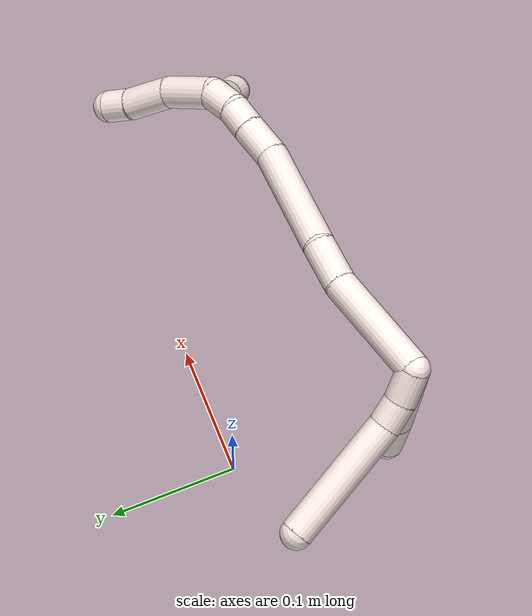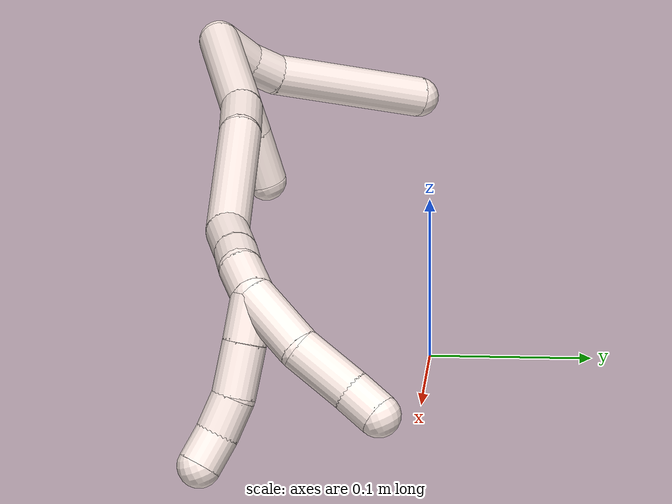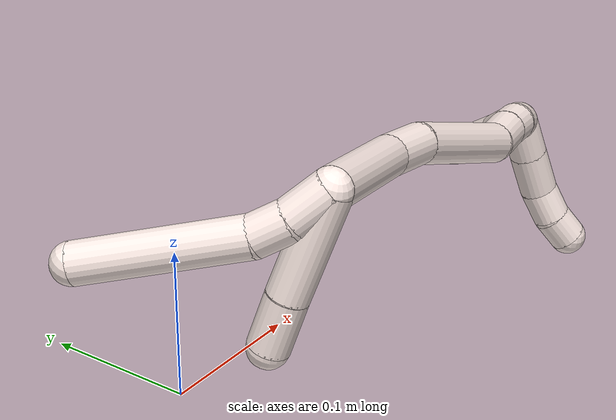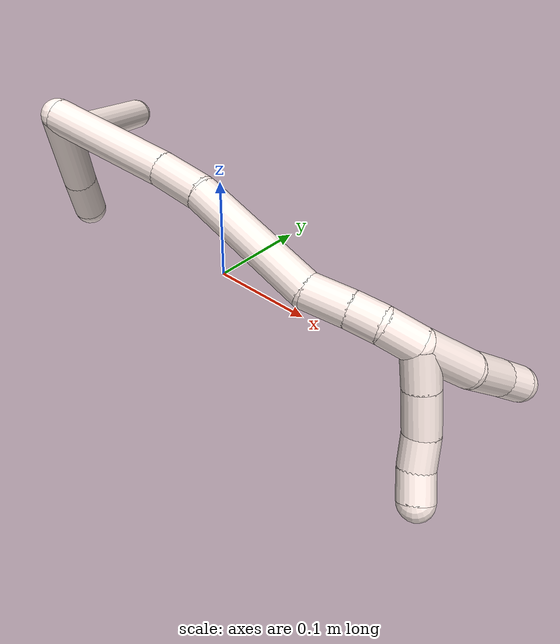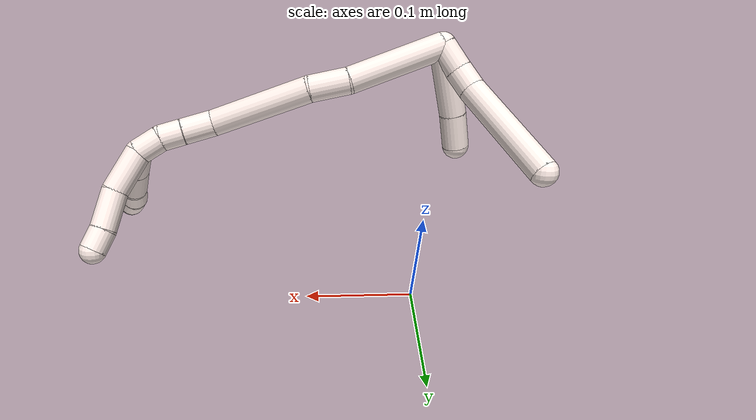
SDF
<sdf version="1.7">
 <world name="default">
  <model name="11">
   <static>0</static>
   <link name="11">
    <collision name="collision-cylinder-e_1_2_8">
     <pose>-0.00694 0.005068 -0.01025 -2.68238 -0.54549 1.74945</pose>
     <geometry><cylinder><radius>0.0125</radius><length>0.026752</length></cylinder></geometry>
     <surface>
      <friction><ode><mu>1.16</mu><mu2>1.16</mu2><slip1>0</slip1><slip2>0</slip2></ode></friction>
      <contact><ode><kp>1e+06</kp><kd>1</kd><max_vel>0</max_vel><min_depth>0.001</min_depth></ode></contact>
     </surface>
    </collision>
    <visual name="visual-cylinder-e_1_2_8">
     <pose>-0.00694 0.005068 -0.01025 -2.68238 -0.54549 1.74945</pose>
     <geometry><cylinder><radius>0.0125</radius><length>0.026752</length></cylinder></geometry>
     <material><ambient>1 0.933333 0.909804 1</ambient></material>
    </visual>
    <collision name="collision-cylinder-e_2_8_9">
     <pose>-0.018824 0.016342 -0.028123 -2.45831 -0.466053 1.1771</pose>
     <geometry><cylinder><radius>0.0125</radius><length>0.022004</length></cylinder></geometry>
     <surface>
      <friction><ode><mu>1.16</mu><mu2>1.16</mu2><slip1>0</slip1><slip2>0</slip2></ode></friction>
      <contact><ode><kp>1e+06</kp><kd>1</kd><max_vel>0</max_vel><min_depth>0.001</min_depth></ode></contact>
     </surface>
    </collision>
    <visual name="visual-cylinder-e_2_8_9">
     <pose>-0.018824 0.016342 -0.028123 -2.45831 -0.466053 1.1771</pose>
     <geometry><cylinder><radius>0.0125</radius><length>0.022004</length></cylinder></geometry>
     <material><ambient>1 0.933333 0.909804 1</ambient></material>
    </visual>
    <collision name="collision-cylinder-e_3_9_6">
     <pose>-0.04336 0.060906 -0.06234 -2.17704 -0.39741 0.734388</pose>
     <geometry><cylinder><radius>0.0125</radius><length>0.101244</length></cylinder></geometry>
     <surface>
      <friction><ode><mu>1.16</mu><mu2>1.16</mu2><slip1>0</slip1><slip2>0</slip2></ode></friction>
      <contact><ode><kp>1e+06</kp><kd>1</kd><max_vel>0</max_vel><min_depth>0.001</min_depth></ode></contact>
     </surface>
    </collision>
    <visual name="visual-cylinder-e_3_9_6">
     <pose>-0.04336 0.060906 -0.06234 -2.17704 -0.39741 0.734388</pose>
     <geometry><cylinder><radius>0.0125</radius><length>0.101244</length></cylinder></geometry>
     <material><ambient>1 0.933333 0.909804 1</ambient></material>
    </visual>
    <collision name="collision-cylinder-e_1_2_10">
     <pose>-0.009122 -0.002511 -0.031821 3.06285 -0.278351 -2.59332</pose>
     <geometry><cylinder><radius>0.0125</radius><length>0.066396</length></cylinder></geometry>
     <surface>
      <friction><ode><mu>1.16</mu><mu2>1.16</mu2><slip1>0</slip1><slip2>0</slip2></ode></friction>
      <contact><ode><kp>1e+06</kp><kd>1</kd><max_vel>0</max_vel><min_depth>0.001</min_depth></ode></contact>
     </surface>
    </collision>
    <visual name="visual-cylinder-e_1_2_10">
     <pose>-0.009122 -0.002511 -0.031821 3.06285 -0.278351 -2.59332</pose>
     <geometry><cylinder><radius>0.0125</radius><length>0.066396</length></cylinder></geometry>
     <material><ambient>1 0.933333 0.909804 1</ambient></material>
    </visual>
    <collision name="collision-cylinder-e_2_10_5">
     <pose>-0.021931 -0.00648 -0.07997 3.05255 -0.22124 -2.3787</pose>
     <geometry><cylinder><radius>0.0125</radius><length>0.033604</length></cylinder></geometry>
     <surface>
      <friction><ode><mu>1.16</mu><mu2>1.16</mu2><slip1>0</slip1><slip2>0</slip2></ode></friction>
      <contact><ode><kp>1e+06</kp><kd>1</kd><max_vel>0</max_vel><min_depth>0.001</min_depth></ode></contact>
     </surface>
    </collision>
    <visual name="visual-cylinder-e_2_10_5">
     <pose>-0.021931 -0.00648 -0.07997 3.05255 -0.22124 -2.3787</pose>
     <geometry><cylinder><radius>0.0125</radius><length>0.033604</length></cylinder></geometry>
     <material><ambient>1 0.933333 0.909804 1</ambient></material>
    </visual>
    <collision name="collision-cylinder-e_1_2_11">
     <pose>0.042651 0.00144 -0.01561 -3.04959 1.21857 -3.00985</pose>
     <geometry><cylinder><radius>0.0125</radius><length>0.090882</length></cylinder></geometry>
     <surface>
      <friction><ode><mu>1.16</mu><mu2>1.16</mu2><slip1>0</slip1><slip2>0</slip2></ode></friction>
      <contact><ode><kp>1e+06</kp><kd>1</kd><max_vel>0</max_vel><min_depth>0.001</min_depth></ode></contact>
     </surface>
    </collision>
    <visual name="visual-cylinder-e_1_2_11">
     <pose>0.042651 0.00144 -0.01561 -3.04959 1.21857 -3.00985</pose>
     <geometry><cylinder><radius>0.0125</radius><length>0.090882</length></cylinder></geometry>
     <material><ambient>1 0.933333 0.909804 1</ambient></material>
    </visual>
    <collision name="collision-cylinder-e_2_11_12">
     <pose>0.102983 0.000825 -0.035388 2.68331 1.31378 2.55416</pose>
     <geometry><cylinder><radius>0.0125</radius><length>0.036562</length></cylinder></geometry>
     <surface>
      <friction><ode><mu>1.16</mu><mu2>1.16</mu2><slip1>0</slip1><slip2>0</slip2></ode></friction>
      <contact><ode><kp>1e+06</kp><kd>1</kd><max_vel>0</max_vel><min_depth>0.001</min_depth></ode></contact>
     </surface>
    </collision>
    <visual name="visual-cylinder-e_2_11_12">
     <pose>0.102983 0.000825 -0.035388 2.68331 1.31378 2.55416</pose>
     <geometry><cylinder><radius>0.0125</radius><length>0.036562</length></cylinder></geometry>
     <material><ambient>1 0.933333 0.909804 1</ambient></material>
    </visual>
    <collision name="collision-cylinder-e_3_12_13">
     <pose>0.164138 -0.012067 -0.057608 2.60098 1.11979 2.30911</pose>
     <geometry><cylinder><radius>0.0125</radius><length>0.096609</length></cylinder></geometry>
     <surface>
      <friction><ode><mu>1.16</mu><mu2>1.16</mu2><slip1>0</slip1><slip2>0</slip2></ode></friction>
      <contact><ode><kp>1e+06</kp><kd>1</kd><max_vel>0</max_vel><min_depth>0.001</min_depth></ode></contact>
     </surface>
    </collision>
    <visual name="visual-cylinder-e_3_12_13">
     <pose>0.164138 -0.012067 -0.057608 2.60098 1.11979 2.30911</pose>
     <geometry><cylinder><radius>0.0125</radius><length>0.096609</length></cylinder></geometry>
     <material><ambient>1 0.933333 0.909804 1</ambient></material>
    </visual>
    <collision name="collision-cylinder-e_4_13_14">
     <pose>0.222006 -0.021718 -0.079515 -2.84331 1.29758 -2.75036</pose>
     <geometry><cylinder><radius>0.0125</radius><length>0.029896</length></cylinder></geometry>
     <surface>
      <friction><ode><mu>1.16</mu><mu2>1.16</mu2><slip1>0</slip1><slip2>0</slip2></ode></friction>
      <contact><ode><kp>1e+06</kp><kd>1</kd><max_vel>0</max_vel><min_depth>0.001</min_depth></ode></contact>
     </surface>
    </collision>
    <visual name="visual-cylinder-e_4_13_14">
     <pose>0.222006 -0.021718 -0.079515 -2.84331 1.29758 -2.75036</pose>
     <geometry><cylinder><radius>0.0125</radius><length>0.029896</length></cylinder></geometry>
     <material><ambient>1 0.933333 0.909804 1</ambient></material>
    </visual>
    <collision name="collision-cylinder-e_5_14_15">
     <pose>0.246572 -0.020187 -0.086233 -3.02124 1.2946 -2.98254</pose>
     <geometry><cylinder><radius>0.0125</radius><length>0.021146</length></cylinder></geometry>
     <surface>
      <friction><ode><mu>1.16</mu><mu2>1.16</mu2><slip1>0</slip1><slip2>0</slip2></ode></friction>
      <contact><ode><kp>1e+06</kp><kd>1</kd><max_vel>0</max_vel><min_depth>0.001</min_depth></ode></contact>
     </surface>
    </collision>
    <visual name="visual-cylinder-e_5_14_15">
     <pose>0.246572 -0.020187 -0.086233 -3.02124 1.2946 -2.98254</pose>
     <geometry><cylinder><radius>0.0125</radius><length>0.021146</length></cylinder></geometry>
     <material><ambient>1 0.933333 0.909804 1</ambient></material>
    </visual>
    <collision name="collision-cylinder-e_6_15_1">
     <pose>0.267337 -0.018608 -0.095524 -2.95219 1.01728 -2.80412</pose>
     <geometry><cylinder><radius>0.0125</radius><length>0.024905</length></cylinder></geometry>
     <surface>
      <friction><ode><mu>1.16</mu><mu2>1.16</mu2><slip1>0</slip1><slip2>0</slip2></ode></friction>
      <contact><ode><kp>1e+06</kp><kd>1</kd><max_vel>0</max_vel><min_depth>0.001</min_depth></ode></contact>
     </surface>
    </collision>
    <visual name="visual-cylinder-e_6_15_1">
     <pose>0.267337 -0.018608 -0.095524 -2.95219 1.01728 -2.80412</pose>
     <geometry><cylinder><radius>0.0125</radius><length>0.024905</length></cylinder></geometry>
     <material><ambient>1 0.933333 0.909804 1</ambient></material>
    </visual>
    <collision name="collision-cylinder-e_1_1_16">
     <pose>0.288925 -0.01021 -0.118325 -2.72905 0.551548 -1.86819</pose>
     <geometry><cylinder><radius>0.0125</radius><length>0.041966</length></cylinder></geometry>
     <surface>
      <friction><ode><mu>1.16</mu><mu2>1.16</mu2><slip1>0</slip1><slip2>0</slip2></ode></friction>
      <contact><ode><kp>1e+06</kp><kd>1</kd><max_vel>0</max_vel><min_depth>0.001</min_depth></ode></contact>
     </surface>
    </collision>
    <visual name="visual-cylinder-e_1_1_16">
     <pose>0.288925 -0.01021 -0.118325 -2.72905 0.551548 -1.86819</pose>
     <geometry><cylinder><radius>0.0125</radius><length>0.041966</length></cylinder></geometry>
     <material><ambient>1 0.933333 0.909804 1</ambient></material>
    </visual>
    <collision name="collision-cylinder-e_2_16_17">
     <pose>0.305168 0.006064 -0.150063 -2.60648 0.285746 -0.966527</pose>
     <geometry><cylinder><radius>0.0125</radius><length>0.037235</length></cylinder></geometry>
     <surface>
      <friction><ode><mu>1.16</mu><mu2>1.16</mu2><slip1>0</slip1><slip2>0</slip2></ode></friction>
      <contact><ode><kp>1e+06</kp><kd>1</kd><max_vel>0</max_vel><min_depth>0.001</min_depth></ode></contact>
     </surface>
    </collision>
    <visual name="visual-cylinder-e_2_16_17">
     <pose>0.305168 0.006064 -0.150063 -2.60648 0.285746 -0.966527</pose>
     <geometry><cylinder><radius>0.0125</radius><length>0.037235</length></cylinder></geometry>
     <material><ambient>1 0.933333 0.909804 1</ambient></material>
    </visual>
    <collision name="collision-cylinder-e_3_17_4">
     <pose>0.314915 0.019919 -0.173514 -2.61083 0.447391 -1.39385</pose>
     <geometry><cylinder><radius>0.0125</radius><length>0.0208</length></cylinder></geometry>
     <surface>
      <friction><ode><mu>1.16</mu><mu2>1.16</mu2><slip1>0</slip1><slip2>0</slip2></ode></friction>
      <contact><ode><kp>1e+06</kp><kd>1</kd><max_vel>0</max_vel><min_depth>0.001</min_depth></ode></contact>
     </surface>
    </collision>
    <visual name="visual-cylinder-e_3_17_4">
     <pose>0.314915 0.019919 -0.173514 -2.61083 0.447391 -1.39385</pose>
     <geometry><cylinder><radius>0.0125</radius><length>0.0208</length></cylinder></geometry>
     <material><ambient>1 0.933333 0.909804 1</ambient></material>
    </visual>
    <collision name="collision-cylinder-e_1_1_18">
     <pose>0.280531 -0.024455 -0.112974 2.5706 0.196018 0.646481</pose>
     <geometry><cylinder><radius>0.0125</radius><length>0.026708</length></cylinder></geometry>
     <surface>
      <friction><ode><mu>1.16</mu><mu2>1.16</mu2><slip1>0</slip1><slip2>0</slip2></ode></friction>
      <contact><ode><kp>1e+06</kp><kd>1</kd><max_vel>0</max_vel><min_depth>0.001</min_depth></ode></contact>
     </surface>
    </collision>
    <visual name="visual-cylinder-e_1_1_18">
     <pose>0.280531 -0.024455 -0.112974 2.5706 0.196018 0.646481</pose>
     <geometry><cylinder><radius>0.0125</radius><length>0.026708</length></cylinder></geometry>
     <material><ambient>1 0.933333 0.909804 1</ambient></material>
    </visual>
    <collision name="collision-cylinder-e_2_18_19">
     <pose>0.285766 -0.039874 -0.136446 2.55146 0.173976 0.558843</pose>
     <geometry><cylinder><radius>0.0125</radius><length>0.030433</length></cylinder></geometry>
     <surface>
      <friction><ode><mu>1.16</mu><mu2>1.16</mu2><slip1>0</slip1><slip2>0</slip2></ode></friction>
      <contact><ode><kp>1e+06</kp><kd>1</kd><max_vel>0</max_vel><min_depth>0.001</min_depth></ode></contact>
     </surface>
    </collision>
    <visual name="visual-cylinder-e_2_18_19">
     <pose>0.285766 -0.039874 -0.136446 2.55146 0.173976 0.558843</pose>
     <geometry><cylinder><radius>0.0125</radius><length>0.030433</length></cylinder></geometry>
     <material><ambient>1 0.933333 0.909804 1</ambient></material>
    </visual>
    <collision name="collision-cylinder-e_3_19_20">
     <pose>0.289573 -0.056254 -0.156685 2.34014 0.104446 0.245523</pose>
     <geometry><cylinder><radius>0.0125</radius><length>0.022508</length></cylinder></geometry>
     <surface>
      <friction><ode><mu>1.16</mu><mu2>1.16</mu2><slip1>0</slip1><slip2>0</slip2></ode></friction>
      <contact><ode><kp>1e+06</kp><kd>1</kd><max_vel>0</max_vel><min_depth>0.001</min_depth></ode></contact>
     </surface>
    </collision>
    <visual name="visual-cylinder-e_3_19_20">
     <pose>0.289573 -0.056254 -0.156685 2.34014 0.104446 0.245523</pose>
     <geometry><cylinder><radius>0.0125</radius><length>0.022508</length></cylinder></geometry>
     <material><ambient>1 0.933333 0.909804 1</ambient></material>
    </visual>
    <collision name="collision-cylinder-e_4_20_3">
     <pose>0.293651 -0.072059 -0.170371 2.22058 0.28945 0.5715</pose>
     <geometry><cylinder><radius>0.0125</radius><length>0.020351</length></cylinder></geometry>
     <surface>
      <friction><ode><mu>1.16</mu><mu2>1.16</mu2><slip1>0</slip1><slip2>0</slip2></ode></friction>
      <contact><ode><kp>1e+06</kp><kd>1</kd><max_vel>0</max_vel><min_depth>0.001</min_depth></ode></contact>
     </surface>
    </collision>
    <visual name="visual-cylinder-e_4_20_3">
     <pose>0.293651 -0.072059 -0.170371 2.22058 0.28945 0.5715</pose>
     <geometry><cylinder><radius>0.0125</radius><length>0.020351</length></cylinder></geometry>
     <material><ambient>1 0.933333 0.909804 1</ambient></material>
    </visual>
    <collision name="collision-sphere-3">
     <pose>0.296555 -0.079824 -0.176271 0 -0 0</pose>
     <geometry><sphere><radius>0.0125</radius></sphere></geometry>
     <surface>
      <friction><ode><mu>1.16</mu><mu2>1.16</mu2><slip1>0</slip1><slip2>0</slip2></ode></friction>
      <contact><ode><kp>1e+06</kp><kd>1</kd><max_vel>0</max_vel><min_depth>0.001</min_depth></ode></contact>
     </surface>
    </collision>
    <visual name="visual-sphere-3">
     <pose>0.296555 -0.079824 -0.176271 0 -0 0</pose>
     <geometry><sphere><radius>0.0125</radius></sphere></geometry>
     <material><ambient>1 0.933333 0.909804 1</ambient></material>
    </visual>
    <collision name="collision-sphere-20">
     <pose>0.290747 -0.064294 -0.164471 0 -0 0</pose>
     <geometry><sphere><radius>0.0125</radius></sphere></geometry>
     <surface>
      <friction><ode><mu>1.16</mu><mu2>1.16</mu2><slip1>0</slip1><slip2>0</slip2></ode></friction>
      <contact><ode><kp>1e+06</kp><kd>1</kd><max_vel>0</max_vel><min_depth>0.001</min_depth></ode></contact>
     </surface>
    </collision>
    <visual name="visual-sphere-20">
     <pose>0.290747 -0.064294 -0.164471 0 -0 0</pose>
     <geometry><sphere><radius>0.0125</radius></sphere></geometry>
     <material><ambient>1 0.933333 0.909804 1</ambient></material>
    </visual>
    <collision name="collision-sphere-19">
     <pose>0.2884 -0.048214 -0.148898 0 -0 0</pose>
     <geometry><sphere><radius>0.0125</radius></sphere></geometry>
     <surface>
      <friction><ode><mu>1.16</mu><mu2>1.16</mu2><slip1>0</slip1><slip2>0</slip2></ode></friction>
      <contact><ode><kp>1e+06</kp><kd>1</kd><max_vel>0</max_vel><min_depth>0.001</min_depth></ode></contact>
     </surface>
    </collision>
    <visual name="visual-sphere-19">
     <pose>0.2884 -0.048214 -0.148898 0 -0 0</pose>
     <geometry><sphere><radius>0.0125</radius></sphere></geometry>
     <material><ambient>1 0.933333 0.909804 1</ambient></material>
    </visual>
    <collision name="collision-sphere-5">
     <pose>-0.025618 -0.007937 -0.096298 0 -0 0</pose>
     <geometry><sphere><radius>0.0125</radius></sphere></geometry>
     <surface>
      <friction><ode><mu>1.16</mu><mu2>1.16</mu2><slip1>0</slip1><slip2>0</slip2></ode></friction>
      <contact><ode><kp>1e+06</kp><kd>1</kd><max_vel>0</max_vel><min_depth>0.001</min_depth></ode></contact>
     </surface>
    </collision>
    <visual name="visual-sphere-5">
     <pose>-0.025618 -0.007937 -0.096298 0 -0 0</pose>
     <geometry><sphere><radius>0.0125</radius></sphere></geometry>
     <material><ambient>1 0.933333 0.909804 1</ambient></material>
    </visual>
    <collision name="collision-sphere-10">
     <pose>-0.018244 -0.005022 -0.063642 0 -0 0</pose>
     <geometry><sphere><radius>0.0125</radius></sphere></geometry>
     <surface>
      <friction><ode><mu>1.16</mu><mu2>1.16</mu2><slip1>0</slip1><slip2>0</slip2></ode></friction>
      <contact><ode><kp>1e+06</kp><kd>1</kd><max_vel>0</max_vel><min_depth>0.001</min_depth></ode></contact>
     </surface>
    </collision>
    <visual name="visual-sphere-10">
     <pose>-0.018244 -0.005022 -0.063642 0 -0 0</pose>
     <geometry><sphere><radius>0.0125</radius></sphere></geometry>
     <material><ambient>1 0.933333 0.909804 1</ambient></material>
    </visual>
    <collision name="collision-sphere-6">
     <pose>-0.062952 0.099265 -0.088936 0 -0 0</pose>
     <geometry><sphere><radius>0.0125</radius></sphere></geometry>
     <surface>
      <friction><ode><mu>1.16</mu><mu2>1.16</mu2><slip1>0</slip1><slip2>0</slip2></ode></friction>
      <contact><ode><kp>1e+06</kp><kd>1</kd><max_vel>0</max_vel><min_depth>0.001</min_depth></ode></contact>
     </surface>
    </collision>
    <visual name="visual-sphere-6">
     <pose>-0.062952 0.099265 -0.088936 0 -0 0</pose>
     <geometry><sphere><radius>0.0125</radius></sphere></geometry>
     <material><ambient>1 0.933333 0.909804 1</ambient></material>
    </visual>
    <collision name="collision-sphere-9">
     <pose>-0.023768 0.022547 -0.035745 0 -0 0</pose>
     <geometry><sphere><radius>0.0125</radius></sphere></geometry>
     <surface>
      <friction><ode><mu>1.16</mu><mu2>1.16</mu2><slip1>0</slip1><slip2>0</slip2></ode></friction>
      <contact><ode><kp>1e+06</kp><kd>1</kd><max_vel>0</max_vel><min_depth>0.001</min_depth></ode></contact>
     </surface>
    </collision>
    <visual name="visual-sphere-9">
     <pose>-0.023768 0.022547 -0.035745 0 -0 0</pose>
     <geometry><sphere><radius>0.0125</radius></sphere></geometry>
     <material><ambient>1 0.933333 0.909804 1</ambient></material>
    </visual>
    <collision name="collision-sphere-2">
     <geometry><sphere><radius>0.0125</radius></sphere></geometry>
     <surface>
      <friction><ode><mu>1.16</mu><mu2>1.16</mu2><slip1>0</slip1><slip2>0</slip2></ode></friction>
      <contact><ode><kp>1e+06</kp><kd>1</kd><max_vel>0</max_vel><min_depth>0.001</min_depth></ode></contact>
     </surface>
    </collision>
    <visual name="visual-sphere-2">
     <geometry><sphere><radius>0.0125</radius></sphere></geometry>
     <material><ambient>1 0.933333 0.909804 1</ambient></material>
    </visual>
    <collision name="collision-sphere-8">
     <pose>-0.01388 0.010137 -0.020501 0 -0 0</pose>
     <geometry><sphere><radius>0.0125</radius></sphere></geometry>
     <surface>
      <friction><ode><mu>1.16</mu><mu2>1.16</mu2><slip1>0</slip1><slip2>0</slip2></ode></friction>
      <contact><ode><kp>1e+06</kp><kd>1</kd><max_vel>0</max_vel><min_depth>0.001</min_depth></ode></contact>
     </surface>
    </collision>
    <visual name="visual-sphere-8">
     <pose>-0.01388 0.010137 -0.020501 0 -0 0</pose>
     <geometry><sphere><radius>0.0125</radius></sphere></geometry>
     <material><ambient>1 0.933333 0.909804 1</ambient></material>
    </visual>
    <collision name="collision-sphere-11">
     <pose>0.085302 0.002881 -0.03122 0 -0 0</pose>
     <geometry><sphere><radius>0.0125</radius></sphere></geometry>
     <surface>
      <friction><ode><mu>1.16</mu><mu2>1.16</mu2><slip1>0</slip1><slip2>0</slip2></ode></friction>
      <contact><ode><kp>1e+06</kp><kd>1</kd><max_vel>0</max_vel><min_depth>0.001</min_depth></ode></contact>
     </surface>
    </collision>
    <visual name="visual-sphere-11">
     <pose>0.085302 0.002881 -0.03122 0 -0 0</pose>
     <geometry><sphere><radius>0.0125</radius></sphere></geometry>
     <material><ambient>1 0.933333 0.909804 1</ambient></material>
    </visual>
    <collision name="collision-sphere-12">
     <pose>0.120663 -0.001231 -0.039555 0 -0 0</pose>
     <geometry><sphere><radius>0.0125</radius></sphere></geometry>
     <surface>
      <friction><ode><mu>1.16</mu><mu2>1.16</mu2><slip1>0</slip1><slip2>0</slip2></ode></friction>
      <contact><ode><kp>1e+06</kp><kd>1</kd><max_vel>0</max_vel><min_depth>0.001</min_depth></ode></contact>
     </surface>
    </collision>
    <visual name="visual-sphere-12">
     <pose>0.120663 -0.001231 -0.039555 0 -0 0</pose>
     <geometry><sphere><radius>0.0125</radius></sphere></geometry>
     <material><ambient>1 0.933333 0.909804 1</ambient></material>
    </visual>
    <collision name="collision-sphere-13">
     <pose>0.207612 -0.022904 -0.07566 0 -0 0</pose>
     <geometry><sphere><radius>0.0125</radius></sphere></geometry>
     <surface>
      <friction><ode><mu>1.16</mu><mu2>1.16</mu2><slip1>0</slip1><slip2>0</slip2></ode></friction>
      <contact><ode><kp>1e+06</kp><kd>1</kd><max_vel>0</max_vel><min_depth>0.001</min_depth></ode></contact>
     </surface>
    </collision>
    <visual name="visual-sphere-13">
     <pose>0.207612 -0.022904 -0.07566 0 -0 0</pose>
     <geometry><sphere><radius>0.0125</radius></sphere></geometry>
     <material><ambient>1 0.933333 0.909804 1</ambient></material>
    </visual>
    <collision name="collision-sphere-14">
     <pose>0.2364 -0.020533 -0.083371 0 -0 0</pose>
     <geometry><sphere><radius>0.0125</radius></sphere></geometry>
     <surface>
      <friction><ode><mu>1.16</mu><mu2>1.16</mu2><slip1>0</slip1><slip2>0</slip2></ode></friction>
      <contact><ode><kp>1e+06</kp><kd>1</kd><max_vel>0</max_vel><min_depth>0.001</min_depth></ode></contact>
     </surface>
    </collision>
    <visual name="visual-sphere-14">
     <pose>0.2364 -0.020533 -0.083371 0 -0 0</pose>
     <geometry><sphere><radius>0.0125</radius></sphere></geometry>
     <material><ambient>1 0.933333 0.909804 1</ambient></material>
    </visual>
    <collision name="collision-sphere-15">
     <pose>0.256744 -0.019841 -0.089095 0 -0 0</pose>
     <geometry><sphere><radius>0.0125</radius></sphere></geometry>
     <surface>
      <friction><ode><mu>1.16</mu><mu2>1.16</mu2><slip1>0</slip1><slip2>0</slip2></ode></friction>
      <contact><ode><kp>1e+06</kp><kd>1</kd><max_vel>0</max_vel><min_depth>0.001</min_depth></ode></contact>
     </surface>
    </collision>
    <visual name="visual-sphere-15">
     <pose>0.256744 -0.019841 -0.089095 0 -0 0</pose>
     <geometry><sphere><radius>0.0125</radius></sphere></geometry>
     <material><ambient>1 0.933333 0.909804 1</ambient></material>
    </visual>
    <collision name="collision-sphere-1">
     <pose>0.27793 -0.017376 -0.101953 0 -0 0</pose>
     <geometry><sphere><radius>0.0125</radius></sphere></geometry>
     <surface>
      <friction><ode><mu>1.16</mu><mu2>1.16</mu2><slip1>0</slip1><slip2>0</slip2></ode></friction>
      <contact><ode><kp>1e+06</kp><kd>1</kd><max_vel>0</max_vel><min_depth>0.001</min_depth></ode></contact>
     </surface>
    </collision>
    <visual name="visual-sphere-1">
     <pose>0.27793 -0.017376 -0.101953 0 -0 0</pose>
     <geometry><sphere><radius>0.0125</radius></sphere></geometry>
     <material><ambient>1 0.933333 0.909804 1</ambient></material>
    </visual>
    <collision name="collision-sphere-18">
     <pose>0.283132 -0.031534 -0.123994 0 -0 0</pose>
     <geometry><sphere><radius>0.0125</radius></sphere></geometry>
     <surface>
      <friction><ode><mu>1.16</mu><mu2>1.16</mu2><slip1>0</slip1><slip2>0</slip2></ode></friction>
      <contact><ode><kp>1e+06</kp><kd>1</kd><max_vel>0</max_vel><min_depth>0.001</min_depth></ode></contact>
     </surface>
    </collision>
    <visual name="visual-sphere-18">
     <pose>0.283132 -0.031534 -0.123994 0 -0 0</pose>
     <geometry><sphere><radius>0.0125</radius></sphere></geometry>
     <material><ambient>1 0.933333 0.909804 1</ambient></material>
    </visual>
    <collision name="collision-sphere-16">
     <pose>0.29992 -0.003045 -0.134697 0 -0 0</pose>
     <geometry><sphere><radius>0.0125</radius></sphere></geometry>
     <surface>
      <friction><ode><mu>1.16</mu><mu2>1.16</mu2><slip1>0</slip1><slip2>0</slip2></ode></friction>
      <contact><ode><kp>1e+06</kp><kd>1</kd><max_vel>0</max_vel><min_depth>0.001</min_depth></ode></contact>
     </surface>
    </collision>
    <visual name="visual-sphere-16">
     <pose>0.29992 -0.003045 -0.134697 0 -0 0</pose>
     <geometry><sphere><radius>0.0125</radius></sphere></geometry>
     <material><ambient>1 0.933333 0.909804 1</ambient></material>
    </visual>
    <collision name="collision-sphere-17">
     <pose>0.310416 0.015172 -0.165428 0 -0 0</pose>
     <geometry><sphere><radius>0.0125</radius></sphere></geometry>
     <surface>
      <friction><ode><mu>1.16</mu><mu2>1.16</mu2><slip1>0</slip1><slip2>0</slip2></ode></friction>
      <contact><ode><kp>1e+06</kp><kd>1</kd><max_vel>0</max_vel><min_depth>0.001</min_depth></ode></contact>
     </surface>
    </collision>
    <visual name="visual-sphere-17">
     <pose>0.310416 0.015172 -0.165428 0 -0 0</pose>
     <geometry><sphere><radius>0.0125</radius></sphere></geometry>
     <material><ambient>1 0.933333 0.909804 1</ambient></material>
    </visual>
    <collision name="collision-sphere-4">
     <pose>0.319414 0.024665 -0.181601 0 -0 0</pose>
     <geometry><sphere><radius>0.0125</radius></sphere></geometry>
     <surface>
      <friction><ode><mu>1.16</mu><mu2>1.16</mu2><slip1>0</slip1><slip2>0</slip2></ode></friction>
      <contact><ode><kp>1e+06</kp><kd>1</kd><max_vel>0</max_vel><min_depth>0.001</min_depth></ode></contact>
     </surface>
    </collision>
    <visual name="visual-sphere-4">
     <pose>0.319414 0.024665 -0.181601 0 -0 0</pose>
     <geometry><sphere><radius>0.0125</radius></sphere></geometry>
     <material><ambient>1 0.933333 0.909804 1</ambient></material>
    </visual>
    <inertial>
     <pose>0.125862 -0.000873 -0.073584 0 -0 0</pose>
     <mass>0.75</mass>
     <inertia>
      <ixx>7.4e-05</ixx>
      <ixy>0</ixy>
      <ixz>0</ixz>
      <iyy>0.000218</iyy>
      <iyz>0</iyz>
      <izz>-0.000195</izz>
     </inertia>
    </inertial>
   </link>
   <pose>-0.026226 -0.131409 0.192629 0.376712 -0.071374 0.088494</pose>
  </model>
 </world>
</sdf>
